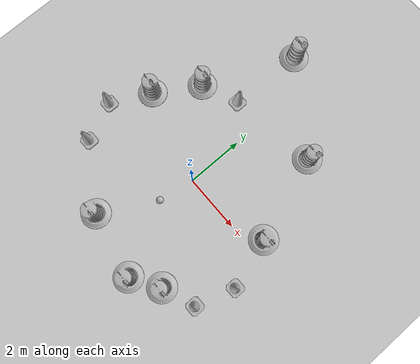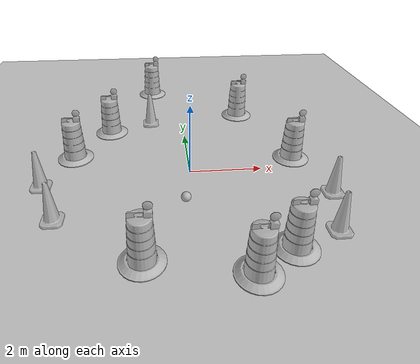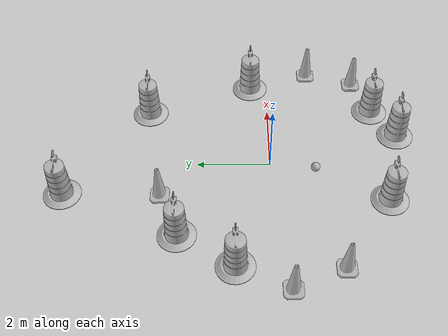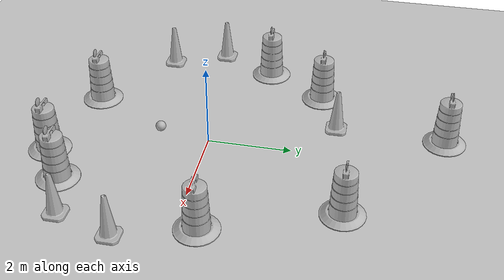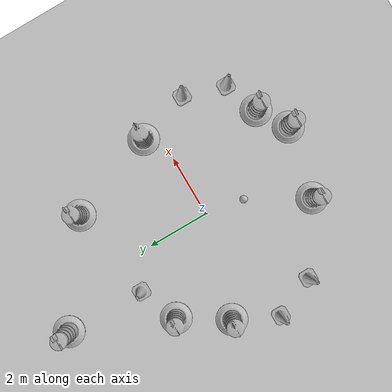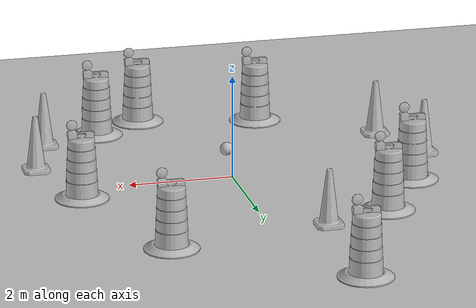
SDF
<sdf version="1.7">
 <world name="default">
  <light name="sun" type="directional">
   <pose>0 0 10 0 -0 0</pose>
   <diffuse>0.8 0.8 0.8 1</diffuse>
   <specular>0.2 0.2 0.2 1</specular>
   <attenuation>
    <range>1000</range>
    <constant>0.9</constant>
    <linear>0.01</linear>
    <quadratic>0.001</quadratic>
   </attenuation>
   <direction>-0.5 0.1 -0.9</direction>
   <spot><inner_angle>0</inner_angle><outer_angle>0</outer_angle><falloff>0</falloff></spot>
  </light>
  <model name="ground_plane">
   <static>1</static>
   <link name="link">
    <collision name="collision">
     <geometry><plane><normal>0 0 1</normal><size>100 100</size></plane></geometry>
     <surface>
      <contact><collide_bitmask>65535</collide_bitmask></contact>
      <friction><ode><mu>100</mu><mu2>50</mu2></ode></friction>
     </surface>
    </collision>
    <visual name="visual">
     <cast_shadows>0</cast_shadows>
     <geometry><plane><normal>0 0 1</normal><size>100 100</size></plane></geometry>
     <material>
      <script><uri>file://media/materials/scripts/gazebo.material</uri><name>Gazebo/Grey</name></script>
     </material>
    </visual>
   </link>
  </model>
  <gravity>0 0 -9.8</gravity>
  <magnetic_field>6e-06 2.3e-05 -4.2e-05</magnetic_field>
  <atmosphere type="adiabatic"/>
  <physics type="ode">
   <max_step_size>0.001</max_step_size>
   <real_time_factor>1</real_time_factor>
   <real_time_update_rate>1000</real_time_update_rate>
  </physics>
  <scene><ambient>0.4 0.4 0.4 1</ambient><background>0.7 0.7 0.7 1</background><shadows>1</shadows></scene>
  <spherical_coordinates>
   <surface_model>EARTH_WGS84</surface_model>
   <latitude_deg>0</latitude_deg>
   <longitude_deg>0</longitude_deg>
   <elevation>0</elevation>
   <heading_deg>0</heading_deg>
  </spherical_coordinates>
  <model name="Construction Cone">
   <link name="link">
    <collision name="collision">
     <geometry>
      <mesh><scale>10 10 10</scale><uri>model://construction_cone/meshes/construction_cone.dae</uri></mesh>
     </geometry>
    </collision>
    <visual name="visual">
     <geometry>
      <mesh><scale>10 10 10</scale><uri>model://construction_cone/meshes/construction_cone.dae</uri></mesh>
     </geometry>
    </visual>
    <inertial>
     <inertia><ixx>1</ixx><ixy>0</ixy><ixz>0</ixz><iyy>1</iyy><iyz>0</iyz><izz>1</izz></inertia>
     <mass>1</mass>
    </inertial>
   </link>
   <pose>-3.92027 -0.412182 -9e-06 0 -0 0</pose>
  </model>
  <model name="frc2016_ball">
   <pose>-0.19998 -1.24306 0.127 0 -0 0</pose>
   <link name="link">
    <inertial>
     <mass>0.213</mass>
     <inertia>
      <ixx>0.00322667</ixx>
      <ixy>0</ixy>
      <ixz>0</ixz>
      <iyy>0.00322667</iyy>
      <iyz>0</iyz>
      <izz>0.00322667</izz>
     </inertia>
    </inertial>
    <visual name="visual"><geometry><sphere><radius>0.127</radius></sphere></geometry></visual>
    <collision name="collision">
     <geometry><sphere><radius>0.127</radius></sphere></geometry>
     <surface>
      <bounce><restitution_coefficient>0.15937</restitution_coefficient><threshold>0</threshold></bounce>
      <contact><ode><max_vel>100</max_vel><min_depth>0.001</min_depth></ode></contact>
     </surface>
    </collision>
   </link>
  </model>
  <model name="Construction Cone_clone">
   <link name="link">
    <collision name="collision">
     <geometry>
      <mesh><scale>10 10 10</scale><uri>model://construction_cone/meshes/construction_cone.dae</uri></mesh>
     </geometry>
    </collision>
    <visual name="visual">
     <geometry>
      <mesh><scale>10 10 10</scale><uri>model://construction_cone/meshes/construction_cone.dae</uri></mesh>
     </geometry>
    </visual>
    <inertial>
     <inertia><ixx>1</ixx><ixy>0</ixy><ixz>0</ixz><iyy>1</iyy><iyz>0</iyz><izz>1</izz></inertia>
     <mass>1</mass>
    </inertial>
   </link>
   <pose>-3.3417 -1.75228 -0 0 -1e-06 0</pose>
  </model>
  <model name="Construction Cone_clone_1">
   <link name="link">
    <collision name="collision">
     <geometry>
      <mesh><scale>10 10 10</scale><uri>model://construction_cone/meshes/construction_cone.dae</uri></mesh>
     </geometry>
    </collision>
    <visual name="visual">
     <geometry>
      <mesh><scale>10 10 10</scale><uri>model://construction_cone/meshes/construction_cone.dae</uri></mesh>
     </geometry>
    </visual>
    <inertial>
     <inertia><ixx>1</ixx><ixy>0</ixy><ixz>0</ixz><iyy>1</iyy><iyz>0</iyz><izz>1</izz></inertia>
     <mass>1</mass>
    </inertial>
   </link>
   <pose>-1.06651 2.95903 -0 0 -1e-06 0</pose>
  </model>
  <model name="Construction Barrel_clone">
   <link name="link">
    <inertial>
     <pose>0 0 0.4 0 -0 0</pose>
     <mass>500</mass>
     <inertia><ixx>51.2096</ixx><iyy>51.2096</iyy><izz>25</izz><ixy>0</ixy><ixz>0</ixz><iyz>0</iyz></inertia>
    </inertial>
    <collision name="collision">
     <geometry><mesh><uri>model://construction_barrel/meshes/construction_barrel.dae</uri></mesh></geometry>
    </collision>
    <visual name="visual">
     <geometry><mesh><uri>model://construction_barrel/meshes/construction_barrel.dae</uri></mesh></geometry>
    </visual>
   </link>
   <pose>-2.33801 2.45231 -1e-06 -8e-06 -2e-06 -4.4e-05</pose>
  </model>
  <model name="Construction Barrel_clone_0">
   <link name="link">
    <inertial>
     <pose>0 0 0.4 0 -0 0</pose>
     <mass>500</mass>
     <inertia><ixx>51.2096</ixx><iyy>51.2096</iyy><izz>25</izz><ixy>0</ixy><ixz>0</ixz><iyz>0</iyz></inertia>
    </inertial>
    <collision name="collision">
     <geometry><mesh><uri>model://construction_barrel/meshes/construction_barrel.dae</uri></mesh></geometry>
    </collision>
    <visual name="visual">
     <geometry><mesh><uri>model://construction_barrel/meshes/construction_barrel.dae</uri></mesh></geometry>
    </visual>
   </link>
   <pose>1.96486 3.41245 -0 0 0 -4.2e-05</pose>
  </model>
  <model name="Construction Barrel_clone_1">
   <link name="link">
    <inertial>
     <pose>0 0 0.4 0 -0 0</pose>
     <mass>500</mass>
     <inertia><ixx>51.2096</ixx><iyy>51.2096</iyy><izz>25</izz><ixy>0</ixy><ixz>0</ixz><iyz>0</iyz></inertia>
    </inertial>
    <collision name="collision">
     <geometry><mesh><uri>model://construction_barrel/meshes/construction_barrel.dae</uri></mesh></geometry>
    </collision>
    <visual name="visual">
     <geometry><mesh><uri>model://construction_barrel/meshes/construction_barrel.dae</uri></mesh></geometry>
    </visual>
   </link>
   <pose>2.99997 0.489399 -0 0 0 -4.1e-05</pose>
  </model>
  <model name="Construction Barrel_clone_2">
   <link name="link">
    <inertial>
     <pose>0 0 0.4 0 -0 0</pose>
     <mass>500</mass>
     <inertia><ixx>51.2096</ixx><iyy>51.2096</iyy><izz>25</izz><ixy>0</ixy><ixz>0</ixz><iyz>0</iyz></inertia>
    </inertial>
    <collision name="collision">
     <geometry><mesh><uri>model://construction_barrel/meshes/construction_barrel.dae</uri></mesh></geometry>
    </collision>
    <visual name="visual">
     <geometry><mesh><uri>model://construction_barrel/meshes/construction_barrel.dae</uri></mesh></geometry>
    </visual>
   </link>
   <pose>-1.00003 5.55518 -1e-06 -8e-06 -2e-06 -4.4e-05</pose>
  </model>
  <model name="Construction Barrel_clone_clone">
   <link name="link">
    <inertial>
     <pose>0 0 0.4 0 -0 0</pose>
     <mass>500</mass>
     <inertia><ixx>51.2096</ixx><iyy>51.2096</iyy><izz>25</izz><ixy>0</ixy><ixz>0</ixz><iyz>0</iyz></inertia>
    </inertial>
    <collision name="collision">
     <geometry><mesh><uri>model://construction_barrel/meshes/construction_barrel.dae</uri></mesh></geometry>
    </collision>
    <visual name="visual">
     <geometry><mesh><uri>model://construction_barrel/meshes/construction_barrel.dae</uri></mesh></geometry>
    </visual>
   </link>
   <pose>-3.25558 0.968868 -1e-06 -8e-06 -2e-06 -4.3e-05</pose>
  </model>
  <model name="Construction Barrel_clone_clone_0">
   <link name="link">
    <inertial>
     <pose>0 0 0.4 0 -0 0</pose>
     <mass>500</mass>
     <inertia><ixx>51.2096</ixx><iyy>51.2096</iyy><izz>25</izz><ixy>0</ixy><ixz>0</ixz><iyz>0</iyz></inertia>
    </inertial>
    <collision name="collision">
     <geometry><mesh><uri>model://construction_barrel/meshes/construction_barrel.dae</uri></mesh></geometry>
    </collision>
    <visual name="visual">
     <geometry><mesh><uri>model://construction_barrel/meshes/construction_barrel.dae</uri></mesh></geometry>
    </visual>
   </link>
   <pose>-1.24926 -3.12259 -1e-06 -8e-06 -2e-06 -4.2e-05</pose>
  </model>
  <model name="Construction Barrel_clone_clone_1">
   <link name="link">
    <inertial>
     <pose>0 0 0.4 0 -0 0</pose>
     <mass>500</mass>
     <inertia><ixx>51.2096</ixx><iyy>51.2096</iyy><izz>25</izz><ixy>0</ixy><ixz>0</ixz><iyz>0</iyz></inertia>
    </inertial>
    <collision name="collision">
     <geometry><mesh><uri>model://construction_barrel/meshes/construction_barrel.dae</uri></mesh></geometry>
    </collision>
    <visual name="visual">
     <geometry><mesh><uri>model://construction_barrel/meshes/construction_barrel.dae</uri></mesh></geometry>
    </visual>
   </link>
   <pose>1.03889 -3.60865 -1e-06 -8e-06 -2e-06 -4.1e-05</pose>
  </model>
  <model name="Construction Barrel_clone_clone_2">
   <link name="link">
    <inertial>
     <pose>0 0 0.4 0 -0 0</pose>
     <mass>500</mass>
     <inertia><ixx>51.2096</ixx><iyy>51.2096</iyy><izz>25</izz><ixy>0</ixy><ixz>0</ixz><iyz>0</iyz></inertia>
    </inertial>
    <collision name="collision">
     <geometry><mesh><uri>model://construction_barrel/meshes/construction_barrel.dae</uri></mesh></geometry>
    </collision>
    <visual name="visual">
     <geometry><mesh><uri>model://construction_barrel/meshes/construction_barrel.dae</uri></mesh></geometry>
    </visual>
   </link>
   <pose>2 -3.00001 -0 0 0 -4.3e-05</pose>
  </model>
  <model name="Construction Cone_clone_clone">
   <link name="link">
    <collision name="collision">
     <geometry>
      <mesh><scale>10 10 10</scale><uri>model://construction_cone/meshes/construction_cone.dae</uri></mesh>
     </geometry>
    </collision>
    <visual name="visual">
     <geometry>
      <mesh><scale>10 10 10</scale><uri>model://construction_cone/meshes/construction_cone.dae</uri></mesh>
     </geometry>
    </visual>
    <inertial>
     <inertia><ixx>1</ixx><ixy>0</ixy><ixz>0</ixz><iyy>1</iyy><iyz>0</iyz><izz>1</izz></inertia>
     <mass>1</mass>
    </inertial>
   </link>
   <pose>3.13162 -2.57526 -1e-05 -0 -0 -0</pose>
  </model>
  <model name="Construction Cone_clone_clone_clone">
   <link name="link">
    <collision name="collision">
     <geometry>
      <mesh><scale>10 10 10</scale><uri>model://construction_cone/meshes/construction_cone.dae</uri></mesh>
     </geometry>
    </collision>
    <visual name="visual">
     <geometry>
      <mesh><scale>10 10 10</scale><uri>model://construction_cone/meshes/construction_cone.dae</uri></mesh>
     </geometry>
    </visual>
    <inertial>
     <inertia><ixx>1</ixx><ixy>0</ixy><ixz>0</ixz><iyy>1</iyy><iyz>0</iyz><izz>1</izz></inertia>
     <mass>1</mass>
    </inertial>
   </link>
   <pose>3.54708 -1.2285 -0 0 -0 0</pose>
  </model>
 </world>
</sdf>
